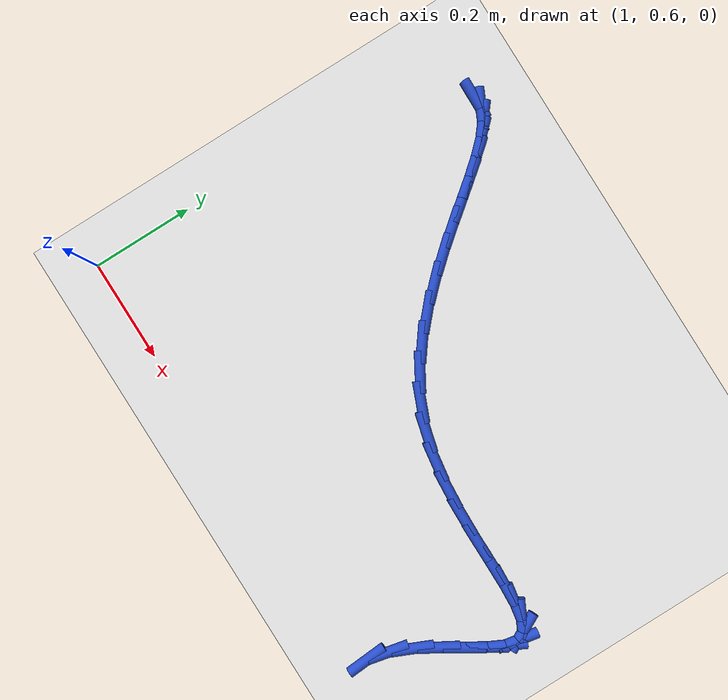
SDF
<sdf version="1.6">
 <world name="default">
  <model name="ground_plane">
   <static>1</static>
   <link name="link">
    <collision name="collision">
     <geometry><plane><normal>0 0 1</normal><size>100 100</size></plane></geometry>
     <surface><friction><ode><mu>100</mu><mu2>50</mu2></ode></friction></surface>
    </collision>
    <visual name="visual">
     <cast_shadows>0</cast_shadows>
     <geometry><plane><normal>0 0 1</normal><size>100 100</size></plane></geometry>
     <material>
      <script><uri>file://media/materials/scripts/gazebo.material</uri><name>Gazebo/WhiteGlow</name></script>
     </material>
    </visual>
   </link>
  </model>
  <model name="line">
   <link name="link_52">
    <pose>1.1144884877789316 1.360518506312133 0.01 0 1.57 -0.01853033949895068</pose>
    <collision name="collision">
     <geometry><cylinder><radius>0.01</radius><length>0.08</length></cylinder></geometry>
    </collision>
    <visual name="visual">
     <material>
      <script><name>Gazebo/Blue</name><uri>file://media/materials/scripts/gazebo.material</uri></script>
     </material>
     <geometry><cylinder><radius>0.01</radius><length>0.08</length></cylinder></geometry>
    </visual>
   </link>
   <link name="link_53">
    <pose>1.1353079386399603 1.3601326706565746 0.01 0 1.57 -0.4399393017097629</pose>
    <collision name="collision">
     <geometry><cylinder><radius>0.01</radius><length>0.08</length></cylinder></geometry>
    </collision>
    <visual name="visual">
     <material>
      <script><name>Gazebo/Blue</name><uri>file://media/materials/scripts/gazebo.material</uri></script>
     </material>
     <geometry><cylinder><radius>0.01</radius><length>0.08</length></cylinder></geometry>
    </visual>
   </link>
   <link name="link_54">
    <pose>1.1573730154166388 1.3497464982804928 0.01 0 1.57 -0.6795084681212601</pose>
    <collision name="collision">
     <geometry><cylinder><radius>0.01</radius><length>0.08</length></cylinder></geometry>
    </collision>
    <visual name="visual">
     <material>
      <script><name>Gazebo/Blue</name><uri>file://media/materials/scripts/gazebo.material</uri></script>
     </material>
     <geometry><cylinder><radius>0.01</radius><length>0.08</length></cylinder></geometry>
    </visual>
   </link>
   <link name="link_55">
    <pose>1.1808750933236998 1.3307603743220735 0.01 0 1.57 -0.8059586996184304</pose>
    <collision name="collision">
     <geometry><cylinder><radius>0.01</radius><length>0.08</length></cylinder></geometry>
    </collision>
    <visual name="visual">
     <material>
      <script><name>Gazebo/Blue</name><uri>file://media/materials/scripts/gazebo.material</uri></script>
     </material>
     <geometry><cylinder><radius>0.01</radius><length>0.08</length></cylinder></geometry>
    </visual>
   </link>
   <link name="link_56">
    <pose>1.2060055475758737 1.3045746839195005 0.01 0 1.57 -0.8706185802185191</pose>
    <collision name="collision">
     <geometry><cylinder><radius>0.01</radius><length>0.08</length></cylinder></geometry>
    </collision>
    <visual name="visual">
     <material>
      <script><name>Gazebo/Blue</name><uri>file://media/materials/scripts/gazebo.material</uri></script>
     </material>
     <geometry><cylinder><radius>0.01</radius><length>0.08</length></cylinder></geometry>
    </visual>
   </link>
   <link name="link_57">
    <pose>1.2329557533878939 1.27258981221096 0.01 0 1.57 -0.8985003004416768</pose>
    <collision name="collision">
     <geometry><cylinder><radius>0.01</radius><length>0.08</length></cylinder></geometry>
    </collision>
    <visual name="visual">
     <material>
      <script><name>Gazebo/Blue</name><uri>file://media/materials/scripts/gazebo.material</uri></script>
     </material>
     <geometry><cylinder><radius>0.01</radius><length>0.08</length></cylinder></geometry>
    </visual>
   </link>
   <link name="link_58">
    <pose>1.2619170859744915 1.236206144334635 0.01 0 1.57 -0.9013703994362381</pose>
    <collision name="collision">
     <geometry><cylinder><radius>0.01</radius><length>0.08</length></cylinder></geometry>
    </collision>
    <visual name="visual">
     <material>
      <script><name>Gazebo/Blue</name><uri>file://media/materials/scripts/gazebo.material</uri></script>
     </material>
     <geometry><cylinder><radius>0.01</radius><length>0.08</length></cylinder></geometry>
    </visual>
   </link>
   <link name="link_59">
    <pose>1.2930809205503984 1.1968240654287126 0.01 0 1.57 -0.8846498576630334</pose>
    <collision name="collision">
     <geometry><cylinder><radius>0.01</radius><length>0.08</length></cylinder></geometry>
    </collision>
    <visual name="visual">
     <material>
      <script><name>Gazebo/Blue</name><uri>file://media/materials/scripts/gazebo.material</uri></script>
     </material>
     <geometry><cylinder><radius>0.01</radius><length>0.08</length></cylinder></geometry>
    </visual>
   </link>
   <link name="link_60">
    <pose>1.3266386323303467 1.1558439606313753 0.01 0 1.57 -0.8504219265182946</pose>
    <collision name="collision">
     <geometry><cylinder><radius>0.01</radius><length>0.08</length></cylinder></geometry>
    </collision>
    <visual name="visual">
     <material>
      <script><name>Gazebo/Blue</name><uri>file://media/materials/scripts/gazebo.material</uri></script>
     </material>
     <geometry><cylinder><radius>0.01</radius><length>0.08</length></cylinder></geometry>
    </visual>
   </link>
   <link name="link_61">
    <pose>1.3627815965290686 1.1146662150808089 0.01 0 1.57 -0.7987748263929947</pose>
    <collision name="collision">
     <geometry><cylinder><radius>0.01</radius><length>0.08</length></cylinder></geometry>
    </collision>
    <visual name="visual">
     <material>
      <script><name>Gazebo/Blue</name><uri>file://media/materials/scripts/gazebo.material</uri></script>
     </material>
     <geometry><cylinder><radius>0.01</radius><length>0.08</length></cylinder></geometry>
    </visual>
   </link>
   <link name="link_62">
    <pose>1.4017011883612958 1.0746912139151985 0.01 0 1.57 -0.7284857630693855</pose>
    <collision name="collision">
     <geometry><cylinder><radius>0.01</radius><length>0.08</length></cylinder></geometry>
    </collision>
    <visual name="visual">
     <material>
      <script><name>Gazebo/Blue</name><uri>file://media/materials/scripts/gazebo.material</uri></script>
     </material>
     <geometry><cylinder><radius>0.01</radius><length>0.08</length></cylinder></geometry>
    </visual>
   </link>
   <link name="link_63">
    <pose>1.4435887830417595 1.037319342272729 0.01 0 1.57 -0.6375520809514028</pose>
    <collision name="collision">
     <geometry><cylinder><radius>0.01</radius><length>0.08</length></cylinder></geometry>
    </collision>
    <visual name="visual">
     <material>
      <script><name>Gazebo/Blue</name><uri>file://media/materials/scripts/gazebo.material</uri></script>
     </material>
     <geometry><cylinder><radius>0.01</radius><length>0.08</length></cylinder></geometry>
    </visual>
   </link>
   <link name="link_64">
    <pose>1.4886357557851924 1.0039509852915844 0.01 0 1.57 -0.5239398974846688</pose>
    <collision name="collision">
     <geometry><cylinder><radius>0.01</radius><length>0.08</length></cylinder></geometry>
    </collision>
    <visual name="visual">
     <material>
      <script><name>Gazebo/Blue</name><uri>file://media/materials/scripts/gazebo.material</uri></script>
     </material>
     <geometry><cylinder><radius>0.01</radius><length>0.08</length></cylinder></geometry>
    </visual>
   </link>
   <link name="link_65">
    <pose>1.537033481806326 0.9759865281099498 0.01 0 1.57 -0.3872040263620928</pose>
    <collision name="collision">
     <geometry><cylinder><radius>0.01</radius><length>0.08</length></cylinder></geometry>
    </collision>
    <visual name="visual">
     <material>
      <script><name>Gazebo/Blue</name><uri>file://media/materials/scripts/gazebo.material</uri></script>
     </material>
     <geometry><cylinder><radius>0.01</radius><length>0.08</length></cylinder></geometry>
    </visual>
   </link>
   <link name="link_66">
    <pose>1.588963045525703 0.9548101578093429 0.01 0 1.57 -0.2503834632655432</pose>
    <collision name="collision">
     <geometry><cylinder><radius>0.01</radius><length>0.08</length></cylinder></geometry>
    </collision>
    <visual name="visual">
     <material>
      <script><name>Gazebo/Blue</name><uri>file://media/materials/scripts/gazebo.material</uri></script>
     </material>
     <geometry><cylinder><radius>0.01</radius><length>0.08</length></cylinder></geometry>
    </visual>
   </link>
   <link name="link_67">
    <pose>1.6439352374642586 0.9407509962964729 0.01 0 1.57 -0.14593731203825155</pose>
    <collision name="collision">
     <geometry><cylinder><radius>0.01</radius><length>0.08</length></cylinder></geometry>
    </collision>
    <visual name="visual">
     <material>
      <script><name>Gazebo/Blue</name><uri>file://media/materials/scripts/gazebo.material</uri></script>
     </material>
     <geometry><cylinder><radius>0.01</radius><length>0.08</length></cylinder></geometry>
    </visual>
   </link>
   <link name="link_68">
    <pose>1.7003903099313558 0.9324531022751995 0.01 0 1.57 -0.07171975302223485</pose>
    <collision name="collision">
     <geometry><cylinder><radius>0.01</radius><length>0.08</length></cylinder></geometry>
    </collision>
    <visual name="visual">
     <material>
      <script><name>Gazebo/Blue</name><uri>file://media/materials/scripts/gazebo.material</uri></script>
     </material>
     <geometry><cylinder><radius>0.01</radius><length>0.08</length></cylinder></geometry>
    </visual>
   </link>
   <link name="link_69">
    <pose>1.7566726330871485 0.9284096127170234 0.01 0 1.57 -0.023794484662976397</pose>
    <collision name="collision">
     <geometry><cylinder><radius>0.01</radius><length>0.08</length></cylinder></geometry>
    </collision>
    <visual name="visual">
     <material>
      <script><name>Gazebo/Blue</name><uri>file://media/materials/scripts/gazebo.material</uri></script>
     </material>
     <geometry><cylinder><radius>0.01</radius><length>0.08</length></cylinder></geometry>
    </visual>
   </link>
   <link name="link_70">
    <pose>1.8111265770917895 0.9271136645934445 0.01 0 1.57 -0.001084358765670592</pose>
    <collision name="collision">
     <geometry><cylinder><radius>0.01</radius><length>0.08</length></cylinder></geometry>
    </collision>
    <visual name="visual">
     <material>
      <script><name>Gazebo/Blue</name><uri>file://media/materials/scripts/gazebo.material</uri></script>
     </material>
     <geometry><cylinder><radius>0.01</radius><length>0.08</length></cylinder></geometry>
    </visual>
   </link>
   <link name="link_71">
    <pose>1.862096512105434 0.9270583948759641 0.01 0 1.57 -0.00701389900016491</pose>
    <collision name="collision">
     <geometry><cylinder><radius>0.01</radius><length>0.08</length></cylinder></geometry>
    </collision>
    <visual name="visual">
     <material>
      <script><name>Gazebo/Blue</name><uri>file://media/materials/scripts/gazebo.material</uri></script>
     </material>
     <geometry><cylinder><radius>0.01</radius><length>0.08</length></cylinder></geometry>
    </visual>
   </link>
   <link name="link_72">
    <pose>1.9079268082882335 0.9267369405360812 0.01 0 1.57 -0.053605582346749295</pose>
    <collision name="collision">
     <geometry><cylinder><radius>0.01</radius><length>0.08</length></cylinder></geometry>
    </collision>
    <visual name="visual">
     <material>
      <script><name>Gazebo/Blue</name><uri>file://media/materials/scripts/gazebo.material</uri></script>
     </material>
     <geometry><cylinder><radius>0.01</radius><length>0.08</length></cylinder></geometry>
    </visual>
   </link>
   <link name="link_73">
    <pose>1.9469618358003413 0.924642438545297 0.01 0 1.57 -0.17394956293932287</pose>
    <collision name="collision">
     <geometry><cylinder><radius>0.01</radius><length>0.08</length></cylinder></geometry>
    </collision>
    <visual name="visual">
     <material>
      <script><name>Gazebo/Blue</name><uri>file://media/materials/scripts/gazebo.material</uri></script>
     </material>
     <geometry><cylinder><radius>0.01</radius><length>0.08</length></cylinder></geometry>
    </visual>
   </link>
   <link name="link_74">
    <pose>1.9775459648019114 0.9192680258751119 0.01 0 1.57 -0.4606108643305508</pose>
    <collision name="collision">
     <geometry><cylinder><radius>0.01</radius><length>0.08</length></cylinder></geometry>
    </collision>
    <visual name="visual">
     <material>
      <script><name>Gazebo/Blue</name><uri>file://media/materials/scripts/gazebo.material</uri></script>
     </material>
     <geometry><cylinder><radius>0.01</radius><length>0.08</length></cylinder></geometry>
    </visual>
   </link>
   <link name="link_75">
    <pose>1.9980235654530967 0.9091068394970256 0.01 0 1.57 -1.0837041318186138</pose>
    <collision name="collision">
     <geometry><cylinder><radius>0.01</radius><length>0.08</length></cylinder></geometry>
    </collision>
    <visual name="visual">
     <material>
      <script><name>Gazebo/Blue</name><uri>file://media/materials/scripts/gazebo.material</uri></script>
     </material>
     <geometry><cylinder><radius>0.01</radius><length>0.08</length></cylinder></geometry>
    </visual>
   </link>
   <link name="link_76">
    <pose>2.00673900791405 0.8926520163825393 0.01 0 1.57 1.3905420031865883</pose>
    <collision name="collision">
     <geometry><cylinder><radius>0.01</radius><length>0.08</length></cylinder></geometry>
    </collision>
    <visual name="visual">
     <material>
      <script><name>Gazebo/Blue</name><uri>file://media/materials/scripts/gazebo.material</uri></script>
     </material>
     <geometry><cylinder><radius>0.01</radius><length>0.08</length></cylinder></geometry>
    </visual>
   </link>
   <link name="link_77">
    <pose>2.0023509477732206 0.8685725284272752 0.01 0 1.57 1.110391089515679</pose>
    <collision name="collision">
     <geometry><cylinder><radius>0.01</radius><length>0.08</length></cylinder></geometry>
    </collision>
    <visual name="visual">
     <material>
      <script><name>Gazebo/Blue</name><uri>file://media/materials/scripts/gazebo.material</uri></script>
     </material>
     <geometry><cylinder><radius>0.01</radius><length>0.08</length></cylinder></geometry>
    </visual>
   </link>
   <link name="link_78">
    <pose>1.9869075242880554 0.8374336798098557 0.01 0 1.57 1.0204106189087272</pose>
    <collision name="collision">
     <geometry><cylinder><radius>0.01</radius><length>0.08</length></cylinder></geometry>
    </collision>
    <visual name="visual">
     <material>
      <script><name>Gazebo/Blue</name><uri>file://media/materials/scripts/gazebo.material</uri></script>
     </material>
     <geometry><cylinder><radius>0.01</radius><length>0.08</length></cylinder></geometry>
    </visual>
   </link>
   <link name="link_79">
    <pose>1.9645244422428072 0.8009575264854523 0.01 0 1.57 1.009854492019791</pose>
    <collision name="collision">
     <geometry><cylinder><radius>0.01</radius><length>0.08</length></cylinder></geometry>
    </collision>
    <visual name="visual">
     <material>
      <script><name>Gazebo/Blue</name><uri>file://media/materials/scripts/gazebo.material</uri></script>
     </material>
     <geometry><cylinder><radius>0.01</radius><length>0.08</length></cylinder></geometry>
    </visual>
   </link>
   <link name="link_80">
    <pose>1.9393468857153253 0.7608826173449126 0.01 0 1.57 1.054099810068853</pose>
    <collision name="collision">
     <geometry><cylinder><radius>0.01</radius><length>0.08</length></cylinder></geometry>
    </collision>
    <visual name="visual">
     <material>
      <script><name>Gazebo/Blue</name><uri>file://media/materials/scripts/gazebo.material</uri></script>
     </material>
     <geometry><cylinder><radius>0.01</radius><length>0.08</length></cylinder></geometry>
    </visual>
   </link>
   <link name="link_81">
    <pose>1.9155200387834583 0.7189475012790825 0.01 0 1.57 1.159761486048604</pose>
    <collision name="collision">
     <geometry><cylinder><radius>0.01</radius><length>0.08</length></cylinder></geometry>
    </collision>
    <visual name="visual">
     <material>
      <script><name>Gazebo/Blue</name><uri>file://media/materials/scripts/gazebo.material</uri></script>
     </material>
     <geometry><cylinder><radius>0.01</radius><length>0.08</length></cylinder></geometry>
    </visual>
   </link>
   <link name="link_82">
    <pose>1.8971890855250564 0.6768907271788104 0.01 0 1.57 1.3580167006771908</pose>
    <collision name="collision">
     <geometry><cylinder><radius>0.01</radius><length>0.08</length></cylinder></geometry>
    </collision>
    <visual name="visual">
     <material>
      <script><name>Gazebo/Blue</name><uri>file://media/materials/scripts/gazebo.material</uri></script>
     </material>
     <geometry><cylinder><radius>0.01</radius><length>0.08</length></cylinder></geometry>
    </visual>
   </link>
   <link name="link_83">
    <pose>1.888448097451912 0.636432569768431 0.01 0 1.57 -1.4993212457243625</pose>
    <collision name="collision">
     <geometry><cylinder><radius>0.01</radius><length>0.08</length></cylinder></geometry>
    </collision>
    <visual name="visual">
     <material>
      <script><name>Gazebo/Blue</name><uri>file://media/materials/scripts/gazebo.material</uri></script>
     </material>
     <geometry><cylinder><radius>0.01</radius><length>0.08</length></cylinder></geometry>
    </visual>
   </link>
  </model>
 </world>
</sdf>
